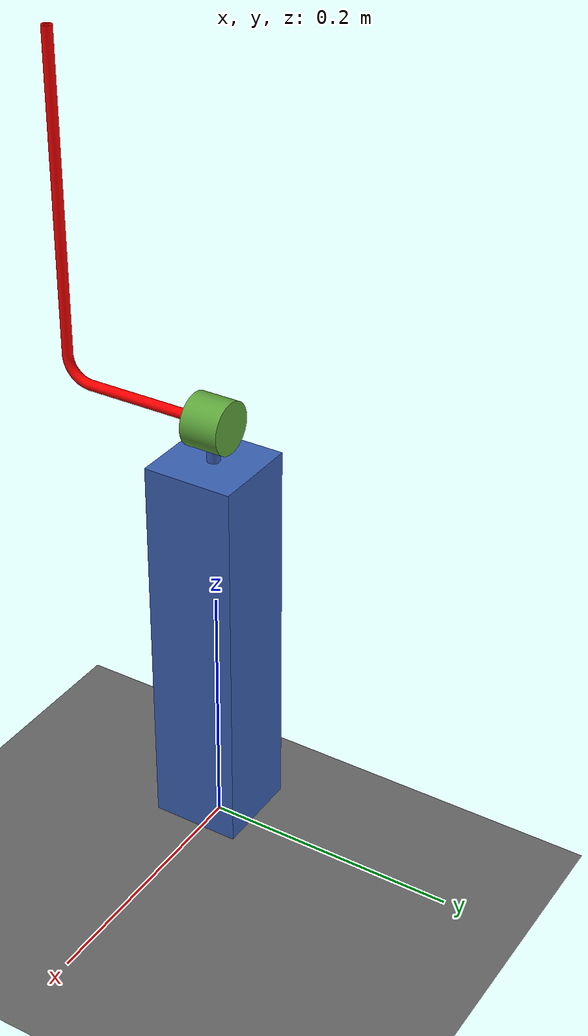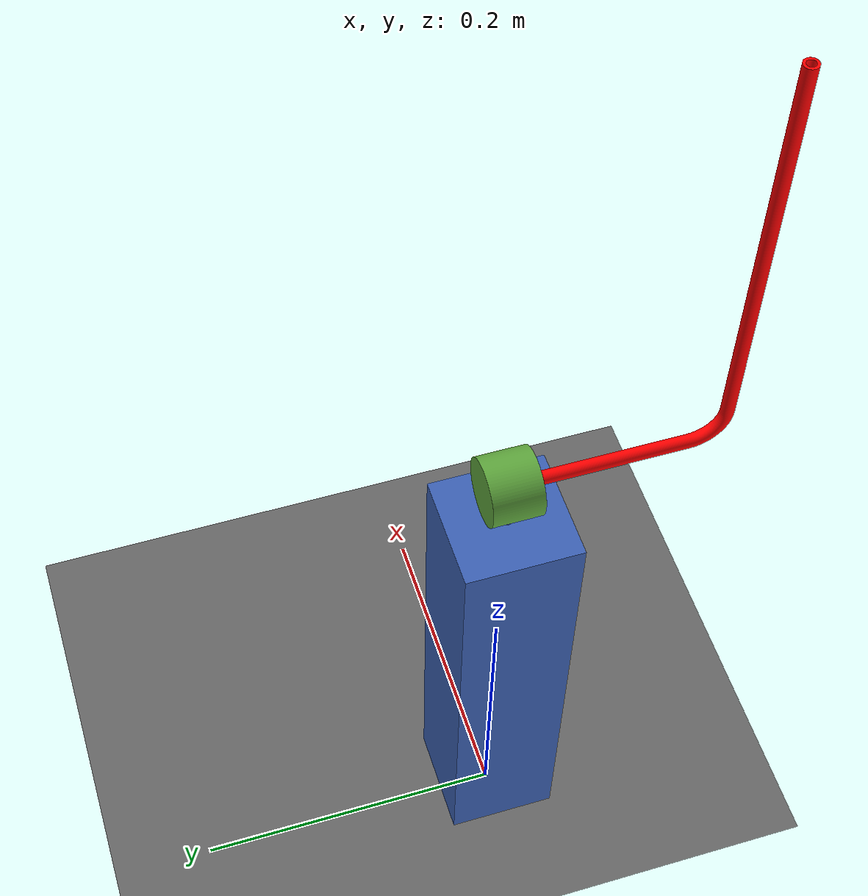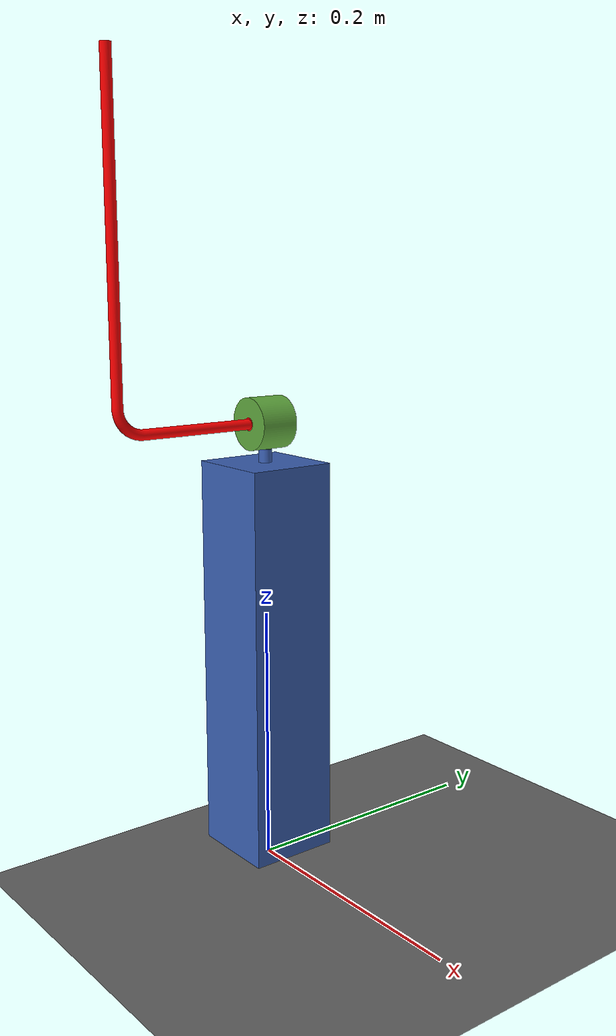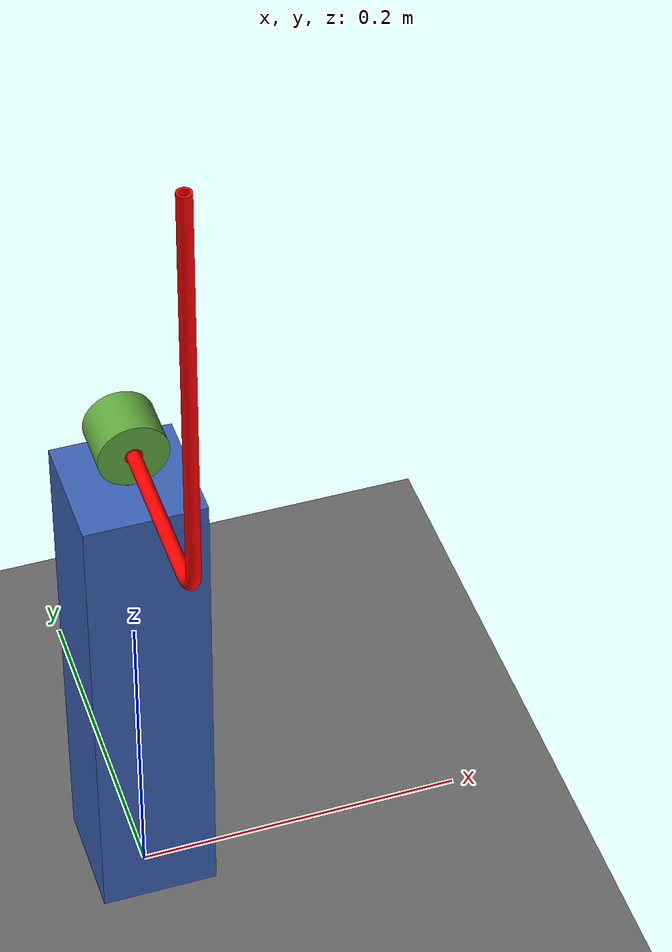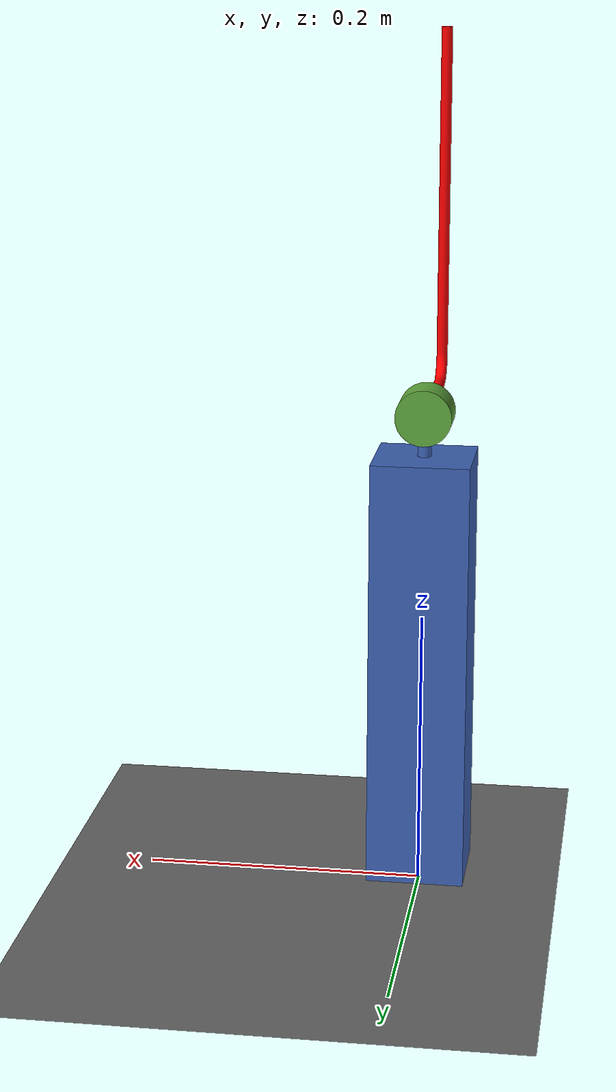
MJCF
<mujoco model="steval_pendel_revised">
  <option iterations="50" timestep="0.001" solver="PGS" gravity="0 0 -9.81" />

  <compiler angle="radian" meshdir="assets" eulerseq="zyx" autolimits="true" />

  <default>
    <joint limited="true" damping="0.01" armature="0.01" frictionloss="0.01" />
    <geom condim="4" contype="1" conaffinity="15" friction="0.9 0.2 0.2" solref="0.001 2" />
    <motor ctrllimited="true" />
    <equality solref="0.001 2" />
    <default class="visualgeom">
      <geom material="visualgeom" condim="1" contype="0" conaffinity="0" />
    </default>
  </default>

  <asset>
    <mesh name="base" content_type="model/stl" file="base.stl" />
    <mesh name="rotary" content_type="model/stl" file="rotary.stl" />
    <mesh name="pendel" content_type="model/stl" file="pendel.stl" />
    <texture name="texplane" type="2d" builtin="checker" rgb1=".0 .0 .0" rgb2=".8 .8 .8" width="100" height="100" />
    <material name="matplane" reflectance="0." texture="texplane" texrepeat="1 1" texuniform="true" />
    <material name="visualgeom" rgba="0.5 0.9 0.2 1" />
  </asset>

  <worldbody>
    <light directional="true" diffuse="0.4 0.4 0.4" specular="0.1 0.1 0.1" pos="0 0 5.0" dir="0 0 -1" castshadow="false" />
    <light directional="true" diffuse="0.6 0.6 0.6" specular="0.2 0.2 0.2" pos="0 0 4" dir="0 0 -1" />
    <geom name="ground" type="plane" pos="0 0 0" size="100 100 0.001" quat="1 0 0 0" material="matplane" condim="3" conaffinity="15" />
    <camera name="fixed" pos="0 -3.0 0.5098348300018851" xyaxes="1 0 0 0 0 1" />
    <camera name="track" mode="trackcom" pos="0 -3.0 0.5098348300018851" xyaxes="1 0 0 0 0 1" />

    <body name="base" pos="0 0 0.009834830001885175" quat="1 0 0 0">
      <site name="imu" size="0.01" pos="0 0 0" />
      <geom type="mesh" rgba="0.231373 0.380392 0.705882 1" mesh="base" contype="1" conaffinity="0" density="0" group="1" class="visualgeom" />
      <geom type="mesh" rgba="0.231373 0.380392 0.705882 1" mesh="base" />

      <body name="rotary" pos="0 0 0.32" quat="1.32679e-06 -1 0 0">
        <inertial pos="-3.60568e-09 0 -0.0199935" quat="0.707106 -0.000328919 -0.000328918 0.707108" mass="0.101821" diaginertia="2.03712e-05 1.78261e-05 1.78134e-05" />
        <joint name="rotary" pos="0 0 0" axis="0 0 1" range="-4.71239 4.71239" actuatorfrcrange="-10 10" />
        <geom pos="0 0 0.32" quat="1.32679e-06 1 0 0" type="mesh" rgba="0.372549 0.654902 0.239216 1" mesh="rotary" contype="1" conaffinity="0" density="0" group="1" class="visualgeom" />
        <geom type="mesh" rgba="0.372549 0.654902 0.239216 1" mesh="rotary" pos="0 0 0.32" quat="1.32679e-06 1 0 0" />

        <body name="pendel" pos="0 -0.015 -0.02" quat="0.707106 0.707106 0 0">
         <inertial pos="0 -0.13 0" quat="0.707106 0.707106 0 0" mass="0.0362517" diaginertia="0.000359053 0.000313828 4.56366e-05" />
          <joint name="pendel" pos="0 0 0" axis="0 0 1" limited="false" />
          <geom pos="0 -0.34 0.015" quat="0.707105 -0.707108 0 0" type="mesh" rgba="1 0 0 1" mesh="pendel" contype="1" conaffinity="0" density="0" group="1" class="visualgeom" />
          <geom type="mesh" rgba="1 0 0 1" mesh="pendel" pos="0 -0.34 0.015" quat="0.707105 -0.707108 0 0" />
        </body >
      </body >
    </body >
  </worldbody>

  <actuator>
    <velocity name="rotary" joint="rotary" ctrllimited="true" ctrlrange="-10 10" gear="1" forcelimited="true" forcerange="-10 10" />
  </actuator>

  <sensor>
    <actuatorpos name="rotary_p" actuator="rotary" />
    <actuatorvel name="rotary_v" actuator="rotary" />
    <actuatorfrc name="rotary_f" actuator="rotary" noise="0.001" />
    <jointpos name="pendel_p" joint="pendel" />
    <jointvel name="pendel_v" joint="pendel" />
    <framequat name="orientation" objtype="site" noise="0.001" objname="imu" />
    <gyro name="angular-velocity" site="imu" noise="0.005" cutoff="34.9" />
  </sensor>
</mujoco>
